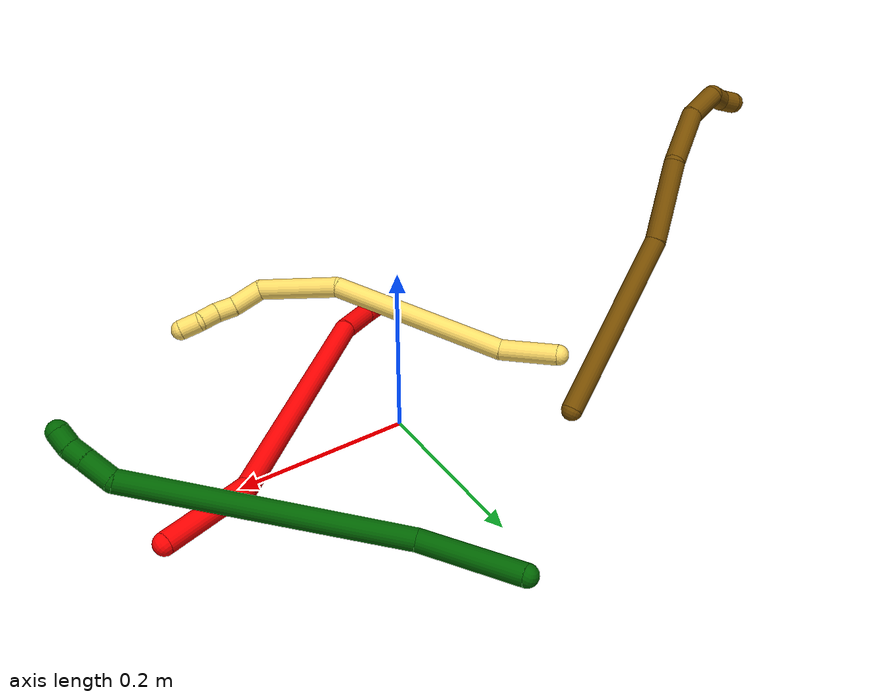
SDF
<sdf version="1.7">
 <world name="default">
  <model name="photoneo_s_sensor">
   <static>1</static>
   <pose>0 0 2 1.57079 1.57079 3.14159</pose>
   <link name="link">
    <inertial><mass>0.1</mass></inertial>
    <sensor name="sensor" type="depth">
     <update_rate>30</update_rate>
     <camera>
      <horizontal_fov>1.22</horizontal_fov>
      <image><width>1920</width><height>1200</height><format>B8G8R8</format></image>
      <clip><near>0.1</near><far>4</far></clip>
      <depth_camera><output>points</output></depth_camera>
     </camera>
     <plugin name="camera_plugin" filename="libgazebo_ros_depth_camera.so">
      <baseline>0.2</baseline>
      <alwaysOn>1</alwaysOn>
      <updateRate>0.0</updateRate>
      <cameraName>camera_ir</cameraName>
      <imageTopicName>/camera/color/image_raw</imageTopicName>
      <cameraInfoTopicName>/camera/color/camera_info</cameraInfoTopicName>
      <depthImageTopicName>/camera/depth/image_raw</depthImageTopicName>
      <depthImageCameraInfoTopicName>/camera/depth/camera_info</depthImageCameraInfoTopicName>
      <pointCloudTopicName>/camera/depth/points</pointCloudTopicName>
      <frameName>fr_optical</frameName>
      <pointCloudCutoff>0.1</pointCloudCutoff>
      <pointCloudCutoffMax>2.0</pointCloudCutoffMax>
      <distortionK1>0</distortionK1>
      <distortionK2>0</distortionK2>
      <distortionK3>0</distortionK3>
      <distortionT1>0</distortionT1>
      <distortionT2>0</distortionT2>
      <CxPrime>0</CxPrime>
      <Cx>0</Cx>
      <Cy>0</Cy>
      <focalLength>0</focalLength>
      <hackBaseline>0</hackBaseline>
     </plugin>
    </sensor>
   </link>
  </model>
  <model name="bin">
   <static>1</static>
   <link name="bottom">
    <collision name="collision-bottom">
     <pose>0 0 -0.01 0 -0 0</pose>
     <geometry><box><size>0.8 0.6 0.02</size></box></geometry>
     <surface>
      <friction><ode><mu>100</mu><mu2>100</mu2></ode></friction>
      <contact><collide_bitmask>65535</collide_bitmask></contact>
     </surface>
    </collision>
   </link>
   <link name="west_wall">
    <collision name="collision-west_wall">
     <pose>-0.41 0 0.1 0 -0 0</pose>
     <geometry><box><size>0.02 0.6 0.2</size></box></geometry>
     <surface>
      <friction><ode><mu>100</mu><mu2>100</mu2></ode></friction>
      <contact><collide_bitmask>65535</collide_bitmask></contact>
     </surface>
    </collision>
   </link>
   <link name="east_wall">
    <collision name="collision-east_wall">
     <pose>0.41 0 0.1 0 -0 0</pose>
     <geometry><box><size>0.02 0.6 0.2</size></box></geometry>
     <surface>
      <friction><ode><mu>100</mu><mu2>100</mu2></ode></friction>
      <contact><collide_bitmask>65535</collide_bitmask></contact>
     </surface>
    </collision>
   </link>
   <link name="south_wall">
    <collision name="collision-south_wall">
     <pose>0 -0.31 0.1 0 -0 0</pose>
     <geometry><box><size>0.8 0.02 0.2</size></box></geometry>
     <surface>
      <friction><ode><mu>100</mu><mu2>100</mu2></ode></friction>
      <contact><collide_bitmask>65535</collide_bitmask></contact>
     </surface>
    </collision>
   </link>
   <link name="north_wall">
    <collision name="collision-north_wall">
     <pose>0 0.31 0.1 0 -0 0</pose>
     <geometry><box><size>0.8 0.02 0.2</size></box></geometry>
     <surface>
      <friction><ode><mu>100</mu><mu2>100</mu2></ode></friction>
      <contact><collide_bitmask>65535</collide_bitmask></contact>
     </surface>
    </collision>
   </link>
  </model>
  <model name="2">
   <static>0</static>
   <link name="2">
    <collision name="collision-cylinder-e_1_1_4">
     <pose>-0.031927 -0.04395 -0.003594 1.65238 -0.626674 -0.676175</pose>
     <geometry><cylinder><radius>0.0125</radius><length>0.108882</length></cylinder></geometry>
     <surface>
      <friction><ode><mu>1.16</mu><mu2>1.16</mu2><slip1>0</slip1><slip2>0</slip2></ode></friction>
      <contact><ode><kp>1e+06</kp><kd>1</kd><max_vel>0</max_vel><min_depth>0.001</min_depth></ode></contact>
     </surface>
    </collision>
    <visual name="visual-cylinder-e_1_1_4">
     <pose>-0.031927 -0.04395 -0.003594 1.65238 -0.626674 -0.676175</pose>
     <geometry><cylinder><radius>0.0125</radius><length>0.108882</length></cylinder></geometry>
     <material><ambient>1 0 0 1</ambient></material>
    </visual>
    <collision name="collision-cylinder-e_2_4_5">
     <pose>-0.16039 -0.175368 -0.066866 2.16954 -0.739227 -1.2655</pose>
     <geometry><cylinder><radius>0.0125</radius><length>0.286575</length></cylinder></geometry>
     <surface>
      <friction><ode><mu>1.16</mu><mu2>1.16</mu2><slip1>0</slip1><slip2>0</slip2></ode></friction>
      <contact><ode><kp>1e+06</kp><kd>1</kd><max_vel>0</max_vel><min_depth>0.001</min_depth></ode></contact>
     </surface>
    </collision>
    <visual name="visual-cylinder-e_2_4_5">
     <pose>-0.16039 -0.175368 -0.066866 2.16954 -0.739227 -1.2655</pose>
     <geometry><cylinder><radius>0.0125</radius><length>0.286575</length></cylinder></geometry>
     <material><ambient>1 0 0 1</ambient></material>
    </visual>
    <collision name="collision-cylinder-e_3_5_6">
     <pose>-0.275736 -0.277236 -0.13136 1.89344 -0.891699 -1.17195</pose>
     <geometry><cylinder><radius>0.0125</radius><length>0.048349</length></cylinder></geometry>
     <surface>
      <friction><ode><mu>1.16</mu><mu2>1.16</mu2><slip1>0</slip1><slip2>0</slip2></ode></friction>
      <contact><ode><kp>1e+06</kp><kd>1</kd><max_vel>0</max_vel><min_depth>0.001</min_depth></ode></contact>
     </surface>
    </collision>
    <visual name="visual-cylinder-e_3_5_6">
     <pose>-0.275736 -0.277236 -0.13136 1.89344 -0.891699 -1.17195</pose>
     <geometry><cylinder><radius>0.0125</radius><length>0.048349</length></cylinder></geometry>
     <material><ambient>1 0 0 1</ambient></material>
    </visual>
    <collision name="collision-cylinder-e_4_6_7">
     <pose>-0.306705 -0.301524 -0.138783 1.82873 -0.871475 -1.0872</pose>
     <geometry><cylinder><radius>0.0125</radius><length>0.031773</length></cylinder></geometry>
     <surface>
      <friction><ode><mu>1.16</mu><mu2>1.16</mu2><slip1>0</slip1><slip2>0</slip2></ode></friction>
      <contact><ode><kp>1e+06</kp><kd>1</kd><max_vel>0</max_vel><min_depth>0.001</min_depth></ode></contact>
     </surface>
    </collision>
    <visual name="visual-cylinder-e_4_6_7">
     <pose>-0.306705 -0.301524 -0.138783 1.82873 -0.871475 -1.0872</pose>
     <geometry><cylinder><radius>0.0125</radius><length>0.031773</length></cylinder></geometry>
     <material><ambient>1 0 0 1</ambient></material>
    </visual>
    <collision name="collision-cylinder-e_5_7_2">
     <pose>-0.330311 -0.312167 -0.14557 2.96296 -1.21562 -2.88554</pose>
     <geometry><cylinder><radius>0.0125</radius><length>0.02442</length></cylinder></geometry>
     <surface>
      <friction><ode><mu>1.16</mu><mu2>1.16</mu2><slip1>0</slip1><slip2>0</slip2></ode></friction>
      <contact><ode><kp>1e+06</kp><kd>1</kd><max_vel>0</max_vel><min_depth>0.001</min_depth></ode></contact>
     </surface>
    </collision>
    <visual name="visual-cylinder-e_5_7_2">
     <pose>-0.330311 -0.312167 -0.14557 2.96296 -1.21562 -2.88554</pose>
     <geometry><cylinder><radius>0.0125</radius><length>0.02442</length></cylinder></geometry>
     <material><ambient>1 0 0 1</ambient></material>
    </visual>
    <collision name="collision-sphere-2">
     <pose>-0.341759 -0.312921 -0.149748 0 -0 0</pose>
     <geometry><sphere><radius>0.0125</radius></sphere></geometry>
     <surface>
      <friction><ode><mu>1.16</mu><mu2>1.16</mu2><slip1>0</slip1><slip2>0</slip2></ode></friction>
      <contact><ode><kp>1e+06</kp><kd>1</kd><max_vel>0</max_vel><min_depth>0.001</min_depth></ode></contact>
     </surface>
    </collision>
    <visual name="visual-sphere-2">
     <pose>-0.341759 -0.312921 -0.149748 0 -0 0</pose>
     <geometry><sphere><radius>0.0125</radius></sphere></geometry>
     <material><ambient>1 0 0 1</ambient></material>
    </visual>
    <collision name="collision-sphere-7">
     <pose>-0.318863 -0.311412 -0.141391 0 -0 0</pose>
     <geometry><sphere><radius>0.0125</radius></sphere></geometry>
     <surface>
      <friction><ode><mu>1.16</mu><mu2>1.16</mu2><slip1>0</slip1><slip2>0</slip2></ode></friction>
      <contact><ode><kp>1e+06</kp><kd>1</kd><max_vel>0</max_vel><min_depth>0.001</min_depth></ode></contact>
     </surface>
    </collision>
    <visual name="visual-sphere-7">
     <pose>-0.318863 -0.311412 -0.141391 0 -0 0</pose>
     <geometry><sphere><radius>0.0125</radius></sphere></geometry>
     <material><ambient>1 0 0 1</ambient></material>
    </visual>
    <collision name="collision-sphere-6">
     <pose>-0.294547 -0.291637 -0.136174 0 -0 0</pose>
     <geometry><sphere><radius>0.0125</radius></sphere></geometry>
     <surface>
      <friction><ode><mu>1.16</mu><mu2>1.16</mu2><slip1>0</slip1><slip2>0</slip2></ode></friction>
      <contact><ode><kp>1e+06</kp><kd>1</kd><max_vel>0</max_vel><min_depth>0.001</min_depth></ode></contact>
     </surface>
    </collision>
    <visual name="visual-sphere-6">
     <pose>-0.294547 -0.291637 -0.136174 0 -0 0</pose>
     <geometry><sphere><radius>0.0125</radius></sphere></geometry>
     <material><ambient>1 0 0 1</ambient></material>
    </visual>
    <collision name="collision-sphere-5">
     <pose>-0.256925 -0.262836 -0.126545 0 -0 0</pose>
     <geometry><sphere><radius>0.0125</radius></sphere></geometry>
     <surface>
      <friction><ode><mu>1.16</mu><mu2>1.16</mu2><slip1>0</slip1><slip2>0</slip2></ode></friction>
      <contact><ode><kp>1e+06</kp><kd>1</kd><max_vel>0</max_vel><min_depth>0.001</min_depth></ode></contact>
     </surface>
    </collision>
    <visual name="visual-sphere-5">
     <pose>-0.256925 -0.262836 -0.126545 0 -0 0</pose>
     <geometry><sphere><radius>0.0125</radius></sphere></geometry>
     <material><ambient>1 0 0 1</ambient></material>
    </visual>
    <collision name="collision-sphere-1">
     <geometry><sphere><radius>0.0125</radius></sphere></geometry>
     <surface>
      <friction><ode><mu>1.16</mu><mu2>1.16</mu2><slip1>0</slip1><slip2>0</slip2></ode></friction>
      <contact><ode><kp>1e+06</kp><kd>1</kd><max_vel>0</max_vel><min_depth>0.001</min_depth></ode></contact>
     </surface>
    </collision>
    <visual name="visual-sphere-1">
     <geometry><sphere><radius>0.0125</radius></sphere></geometry>
     <material><ambient>1 0 0 1</ambient></material>
    </visual>
    <collision name="collision-sphere-4">
     <pose>-0.063854 -0.087899 -0.007188 0 -0 0</pose>
     <geometry><sphere><radius>0.0125</radius></sphere></geometry>
     <surface>
      <friction><ode><mu>1.16</mu><mu2>1.16</mu2><slip1>0</slip1><slip2>0</slip2></ode></friction>
      <contact><ode><kp>1e+06</kp><kd>1</kd><max_vel>0</max_vel><min_depth>0.001</min_depth></ode></contact>
     </surface>
    </collision>
    <visual name="visual-sphere-4">
     <pose>-0.063854 -0.087899 -0.007188 0 -0 0</pose>
     <geometry><sphere><radius>0.0125</radius></sphere></geometry>
     <material><ambient>1 0 0 1</ambient></material>
    </visual>
    <inertial>
     <pose>-0.161166 -0.171298 -0.067738 0 -0 0</pose>
     <mass>0.5</mass>
     <inertia>
      <ixx>-0.000971</ixx>
      <ixy>0</ixy>
      <ixz>0</ixz>
      <iyy>-0.000723</iyy>
      <iyz>0</iyz>
      <izz>0.0027</izz>
     </inertia>
    </inertial>
   </link>
   <pose>0.310083 0.063931 0.030777 -2.376 -0.800247 0.844855</pose>
  </model>
  <model name="5">
   <static>0</static>
   <link name="5">
    <collision name="collision-cylinder-e_1_1_4">
     <pose>0.017163 -0.014379 -0.026947 2.65144 0.511956 1.61619</pose>
     <geometry><cylinder><radius>0.0125</radius><length>0.070071</length></cylinder></geometry>
     <surface>
      <friction><ode><mu>1.16</mu><mu2>1.16</mu2><slip1>0</slip1><slip2>0</slip2></ode></friction>
      <contact><ode><kp>1e+06</kp><kd>1</kd><max_vel>0</max_vel><min_depth>0.001</min_depth></ode></contact>
     </surface>
    </collision>
    <visual name="visual-cylinder-e_1_1_4">
     <pose>0.017163 -0.014379 -0.026947 2.65144 0.511956 1.61619</pose>
     <geometry><cylinder><radius>0.0125</radius><length>0.070071</length></cylinder></geometry>
     <material><ambient>1 0.858824 0.4 1</ambient></material>
    </visual>
    <collision name="collision-cylinder-e_2_4_5">
     <pose>0.077285 -0.098767 -0.123648 2.35436 0.410035 0.928427</pose>
     <geometry><cylinder><radius>0.0125</radius><length>0.215521</length></cylinder></geometry>
     <surface>
      <friction><ode><mu>1.16</mu><mu2>1.16</mu2><slip1>0</slip1><slip2>0</slip2></ode></friction>
      <contact><ode><kp>1e+06</kp><kd>1</kd><max_vel>0</max_vel><min_depth>0.001</min_depth></ode></contact>
     </surface>
    </collision>
    <visual name="visual-cylinder-e_2_4_5">
     <pose>0.077285 -0.098767 -0.123648 2.35436 0.410035 0.928427</pose>
     <geometry><cylinder><radius>0.0125</radius><length>0.215521</length></cylinder></geometry>
     <material><ambient>1 0.858824 0.4 1</ambient></material>
    </visual>
    <collision name="collision-cylinder-e_3_5_6">
     <pose>0.147918 -0.185154 -0.233577 2.75454 0.567836 1.95876</pose>
     <geometry><cylinder><radius>0.0125</radius><length>0.102921</length></cylinder></geometry>
     <surface>
      <friction><ode><mu>1.16</mu><mu2>1.16</mu2><slip1>0</slip1><slip2>0</slip2></ode></friction>
      <contact><ode><kp>1e+06</kp><kd>1</kd><max_vel>0</max_vel><min_depth>0.001</min_depth></ode></contact>
     </surface>
    </collision>
    <visual name="visual-cylinder-e_3_5_6">
     <pose>0.147918 -0.185154 -0.233577 2.75454 0.567836 1.95876</pose>
     <geometry><cylinder><radius>0.0125</radius><length>0.102921</length></cylinder></geometry>
     <material><ambient>1 0.858824 0.4 1</ambient></material>
    </visual>
    <collision name="collision-cylinder-e_4_6_7">
     <pose>0.192972 -0.198891 -0.281812 -2.82516 1.1168 -2.6415</pose>
     <geometry><cylinder><radius>0.0125</radius><length>0.038672</length></cylinder></geometry>
     <surface>
      <friction><ode><mu>1.16</mu><mu2>1.16</mu2><slip1>0</slip1><slip2>0</slip2></ode></friction>
      <contact><ode><kp>1e+06</kp><kd>1</kd><max_vel>0</max_vel><min_depth>0.001</min_depth></ode></contact>
     </surface>
    </collision>
    <visual name="visual-cylinder-e_4_6_7">
     <pose>0.192972 -0.198891 -0.281812 -2.82516 1.1168 -2.6415</pose>
     <geometry><cylinder><radius>0.0125</radius><length>0.038672</length></cylinder></geometry>
     <material><ambient>1 0.858824 0.4 1</ambient></material>
    </visual>
    <collision name="collision-cylinder-e_5_7_8">
     <pose>0.221787 -0.197375 -0.293632 2.85134 1.24024 2.73784</pose>
     <geometry><cylinder><radius>0.0125</radius><length>0.024186</length></cylinder></geometry>
     <surface>
      <friction><ode><mu>1.16</mu><mu2>1.16</mu2><slip1>0</slip1><slip2>0</slip2></ode></friction>
      <contact><ode><kp>1e+06</kp><kd>1</kd><max_vel>0</max_vel><min_depth>0.001</min_depth></ode></contact>
     </surface>
    </collision>
    <visual name="visual-cylinder-e_5_7_8">
     <pose>0.221787 -0.197375 -0.293632 2.85134 1.24024 2.73784</pose>
     <geometry><cylinder><radius>0.0125</radius><length>0.024186</length></cylinder></geometry>
     <material><ambient>1 0.858824 0.4 1</ambient></material>
    </visual>
    <collision name="collision-cylinder-e_6_8_9">
     <pose>0.244927 -0.19812 -0.298221 -2.71314 1.4931 -2.67967</pose>
     <geometry><cylinder><radius>0.0125</radius><length>0.023475</length></cylinder></geometry>
     <surface>
      <friction><ode><mu>1.16</mu><mu2>1.16</mu2><slip1>0</slip1><slip2>0</slip2></ode></friction>
      <contact><ode><kp>1e+06</kp><kd>1</kd><max_vel>0</max_vel><min_depth>0.001</min_depth></ode></contact>
     </surface>
    </collision>
    <visual name="visual-cylinder-e_6_8_9">
     <pose>0.244927 -0.19812 -0.298221 -2.71314 1.4931 -2.67967</pose>
     <geometry><cylinder><radius>0.0125</radius><length>0.023475</length></cylinder></geometry>
     <material><ambient>1 0.858824 0.4 1</ambient></material>
    </visual>
    <collision name="collision-cylinder-e_7_9_2">
     <pose>0.267086 -0.197737 -0.306037 -3.14097 0.981714 -3.14042</pose>
     <geometry><cylinder><radius>0.0125</radius><length>0.025154</length></cylinder></geometry>
     <surface>
      <friction><ode><mu>1.16</mu><mu2>1.16</mu2><slip1>0</slip1><slip2>0</slip2></ode></friction>
      <contact><ode><kp>1e+06</kp><kd>1</kd><max_vel>0</max_vel><min_depth>0.001</min_depth></ode></contact>
     </surface>
    </collision>
    <visual name="visual-cylinder-e_7_9_2">
     <pose>0.267086 -0.197737 -0.306037 -3.14097 0.981714 -3.14042</pose>
     <geometry><cylinder><radius>0.0125</radius><length>0.025154</length></cylinder></geometry>
     <material><ambient>1 0.858824 0.4 1</ambient></material>
    </visual>
    <collision name="collision-sphere-2">
     <pose>0.277543 -0.197733 -0.313025 0 -0 0</pose>
     <geometry><sphere><radius>0.0125</radius></sphere></geometry>
     <surface>
      <friction><ode><mu>1.16</mu><mu2>1.16</mu2><slip1>0</slip1><slip2>0</slip2></ode></friction>
      <contact><ode><kp>1e+06</kp><kd>1</kd><max_vel>0</max_vel><min_depth>0.001</min_depth></ode></contact>
     </surface>
    </collision>
    <visual name="visual-sphere-2">
     <pose>0.277543 -0.197733 -0.313025 0 -0 0</pose>
     <geometry><sphere><radius>0.0125</radius></sphere></geometry>
     <material><ambient>1 0.858824 0.4 1</ambient></material>
    </visual>
    <collision name="collision-sphere-9">
     <pose>0.256629 -0.197741 -0.29905 0 -0 0</pose>
     <geometry><sphere><radius>0.0125</radius></sphere></geometry>
     <surface>
      <friction><ode><mu>1.16</mu><mu2>1.16</mu2><slip1>0</slip1><slip2>0</slip2></ode></friction>
      <contact><ode><kp>1e+06</kp><kd>1</kd><max_vel>0</max_vel><min_depth>0.001</min_depth></ode></contact>
     </surface>
    </collision>
    <visual name="visual-sphere-9">
     <pose>0.256629 -0.197741 -0.29905 0 -0 0</pose>
     <geometry><sphere><radius>0.0125</radius></sphere></geometry>
     <material><ambient>1 0.858824 0.4 1</ambient></material>
    </visual>
    <collision name="collision-sphere-4">
     <pose>0.034327 -0.028757 -0.053895 0 -0 0</pose>
     <geometry><sphere><radius>0.0125</radius></sphere></geometry>
     <surface>
      <friction><ode><mu>1.16</mu><mu2>1.16</mu2><slip1>0</slip1><slip2>0</slip2></ode></friction>
      <contact><ode><kp>1e+06</kp><kd>1</kd><max_vel>0</max_vel><min_depth>0.001</min_depth></ode></contact>
     </surface>
    </collision>
    <visual name="visual-sphere-4">
     <pose>0.034327 -0.028757 -0.053895 0 -0 0</pose>
     <geometry><sphere><radius>0.0125</radius></sphere></geometry>
     <material><ambient>1 0.858824 0.4 1</ambient></material>
    </visual>
    <collision name="collision-sphere-1">
     <geometry><sphere><radius>0.0125</radius></sphere></geometry>
     <surface>
      <friction><ode><mu>1.16</mu><mu2>1.16</mu2><slip1>0</slip1><slip2>0</slip2></ode></friction>
      <contact><ode><kp>1e+06</kp><kd>1</kd><max_vel>0</max_vel><min_depth>0.001</min_depth></ode></contact>
     </surface>
    </collision>
    <visual name="visual-sphere-1">
     <geometry><sphere><radius>0.0125</radius></sphere></geometry>
     <material><ambient>1 0.858824 0.4 1</ambient></material>
    </visual>
    <collision name="collision-sphere-8">
     <pose>0.233225 -0.198498 -0.297392 0 -0 0</pose>
     <geometry><sphere><radius>0.0125</radius></sphere></geometry>
     <surface>
      <friction><ode><mu>1.16</mu><mu2>1.16</mu2><slip1>0</slip1><slip2>0</slip2></ode></friction>
      <contact><ode><kp>1e+06</kp><kd>1</kd><max_vel>0</max_vel><min_depth>0.001</min_depth></ode></contact>
     </surface>
    </collision>
    <visual name="visual-sphere-8">
     <pose>0.233225 -0.198498 -0.297392 0 -0 0</pose>
     <geometry><sphere><radius>0.0125</radius></sphere></geometry>
     <material><ambient>1 0.858824 0.4 1</ambient></material>
    </visual>
    <collision name="collision-sphere-5">
     <pose>0.120242 -0.168778 -0.193402 0 -0 0</pose>
     <geometry><sphere><radius>0.0125</radius></sphere></geometry>
     <surface>
      <friction><ode><mu>1.16</mu><mu2>1.16</mu2><slip1>0</slip1><slip2>0</slip2></ode></friction>
      <contact><ode><kp>1e+06</kp><kd>1</kd><max_vel>0</max_vel><min_depth>0.001</min_depth></ode></contact>
     </surface>
    </collision>
    <visual name="visual-sphere-5">
     <pose>0.120242 -0.168778 -0.193402 0 -0 0</pose>
     <geometry><sphere><radius>0.0125</radius></sphere></geometry>
     <material><ambient>1 0.858824 0.4 1</ambient></material>
    </visual>
    <collision name="collision-sphere-6">
     <pose>0.175594 -0.201529 -0.273753 0 -0 0</pose>
     <geometry><sphere><radius>0.0125</radius></sphere></geometry>
     <surface>
      <friction><ode><mu>1.16</mu><mu2>1.16</mu2><slip1>0</slip1><slip2>0</slip2></ode></friction>
      <contact><ode><kp>1e+06</kp><kd>1</kd><max_vel>0</max_vel><min_depth>0.001</min_depth></ode></contact>
     </surface>
    </collision>
    <visual name="visual-sphere-6">
     <pose>0.175594 -0.201529 -0.273753 0 -0 0</pose>
     <geometry><sphere><radius>0.0125</radius></sphere></geometry>
     <material><ambient>1 0.858824 0.4 1</ambient></material>
    </visual>
    <collision name="collision-sphere-7">
     <pose>0.210349 -0.196252 -0.289871 0 -0 0</pose>
     <geometry><sphere><radius>0.0125</radius></sphere></geometry>
     <surface>
      <friction><ode><mu>1.16</mu><mu2>1.16</mu2><slip1>0</slip1><slip2>0</slip2></ode></friction>
      <contact><ode><kp>1e+06</kp><kd>1</kd><max_vel>0</max_vel><min_depth>0.001</min_depth></ode></contact>
     </surface>
    </collision>
    <visual name="visual-sphere-7">
     <pose>0.210349 -0.196252 -0.289871 0 -0 0</pose>
     <geometry><sphere><radius>0.0125</radius></sphere></geometry>
     <material><ambient>1 0.858824 0.4 1</ambient></material>
    </visual>
    <inertial>
     <pose>0.116755 -0.12688 -0.170552 0 -0 0</pose>
     <mass>0.5</mass>
     <inertia>
      <ixx>0.001168</ixx>
      <ixy>0</ixy>
      <ixz>0</ixz>
      <iyy>0.00061</iyy>
      <iyz>0</iyz>
      <izz>0.000151</izz>
     </inertia>
    </inertial>
   </link>
   <pose>-0.203584 0.024093 0.030002 -0.977086 0.024042 0.185694</pose>
  </model>
  <model name="6">
   <static>0</static>
   <link name="6">
    <collision name="collision-cylinder-e_1_1_4">
     <pose>0.038595 -0.039263 -0.02565 2.14948 0.688571 1.1703</pose>
     <geometry><cylinder><radius>0.0125</radius><length>0.121477</length></cylinder></geometry>
     <surface>
      <friction><ode><mu>1.16</mu><mu2>1.16</mu2><slip1>0</slip1><slip2>0</slip2></ode></friction>
      <contact><ode><kp>1e+06</kp><kd>1</kd><max_vel>0</max_vel><min_depth>0.001</min_depth></ode></contact>
     </surface>
    </collision>
    <visual name="visual-cylinder-e_1_1_4">
     <pose>0.038595 -0.039263 -0.02565 2.14948 0.688571 1.1703</pose>
     <geometry><cylinder><radius>0.0125</radius><length>0.121477</length></cylinder></geometry>
     <material><ambient>0 0.392157 0.003922 1</ambient></material>
    </visual>
    <collision name="collision-cylinder-e_2_4_5">
     <pose>0.223161 -0.11789 -0.066313 1.93513 1.28982 1.65861</pose>
     <geometry><cylinder><radius>0.0125</radius><length>0.303856</length></cylinder></geometry>
     <surface>
      <friction><ode><mu>1.16</mu><mu2>1.16</mu2><slip1>0</slip1><slip2>0</slip2></ode></friction>
      <contact><ode><kp>1e+06</kp><kd>1</kd><max_vel>0</max_vel><min_depth>0.001</min_depth></ode></contact>
     </surface>
    </collision>
    <visual name="visual-cylinder-e_2_4_5">
     <pose>0.223161 -0.11789 -0.066313 1.93513 1.28982 1.65861</pose>
     <geometry><cylinder><radius>0.0125</radius><length>0.303856</length></cylinder></geometry>
     <material><ambient>0 0.392157 0.003922 1</ambient></material>
    </visual>
    <collision name="collision-cylinder-e_3_5_6">
     <pose>0.381093 -0.169344 -0.081426 1.57924 0.780014 0.78597</pose>
     <geometry><cylinder><radius>0.0125</radius><length>0.034017</length></cylinder></geometry>
     <surface>
      <friction><ode><mu>1.16</mu><mu2>1.16</mu2><slip1>0</slip1><slip2>0</slip2></ode></friction>
      <contact><ode><kp>1e+06</kp><kd>1</kd><max_vel>0</max_vel><min_depth>0.001</min_depth></ode></contact>
     </surface>
    </collision>
    <visual name="visual-cylinder-e_3_5_6">
     <pose>0.381093 -0.169344 -0.081426 1.57924 0.780014 0.78597</pose>
     <geometry><cylinder><radius>0.0125</radius><length>0.034017</length></cylinder></geometry>
     <material><ambient>0 0.392157 0.003922 1</ambient></material>
    </visual>
    <collision name="collision-cylinder-e_4_6_7">
     <pose>0.400326 -0.188685 -0.081636 1.58561 0.786817 0.797363</pose>
     <geometry><cylinder><radius>0.0125</radius><length>0.020538</length></cylinder></geometry>
     <surface>
      <friction><ode><mu>1.16</mu><mu2>1.16</mu2><slip1>0</slip1><slip2>0</slip2></ode></friction>
      <contact><ode><kp>1e+06</kp><kd>1</kd><max_vel>0</max_vel><min_depth>0.001</min_depth></ode></contact>
     </surface>
    </collision>
    <visual name="visual-cylinder-e_4_6_7">
     <pose>0.400326 -0.188685 -0.081636 1.58561 0.786817 0.797363</pose>
     <geometry><cylinder><radius>0.0125</radius><length>0.020538</length></cylinder></geometry>
     <material><ambient>0 0.392157 0.003922 1</ambient></material>
    </visual>
    <collision name="collision-cylinder-e_5_7_2">
     <pose>0.413408 -0.203919 -0.079839 1.33667 0.616022 0.492185</pose>
     <geometry><cylinder><radius>0.0125</radius><length>0.020113</length></cylinder></geometry>
     <surface>
      <friction><ode><mu>1.16</mu><mu2>1.16</mu2><slip1>0</slip1><slip2>0</slip2></ode></friction>
      <contact><ode><kp>1e+06</kp><kd>1</kd><max_vel>0</max_vel><min_depth>0.001</min_depth></ode></contact>
     </surface>
    </collision>
    <visual name="visual-cylinder-e_5_7_2">
     <pose>0.413408 -0.203919 -0.079839 1.33667 0.616022 0.492185</pose>
     <geometry><cylinder><radius>0.0125</radius><length>0.020113</length></cylinder></geometry>
     <material><ambient>0 0.392157 0.003922 1</ambient></material>
    </visual>
    <collision name="collision-sphere-2">
     <pose>0.419219 -0.211903 -0.077935 0 -0 0</pose>
     <geometry><sphere><radius>0.0125</radius></sphere></geometry>
     <surface>
      <friction><ode><mu>1.16</mu><mu2>1.16</mu2><slip1>0</slip1><slip2>0</slip2></ode></friction>
      <contact><ode><kp>1e+06</kp><kd>1</kd><max_vel>0</max_vel><min_depth>0.001</min_depth></ode></contact>
     </surface>
    </collision>
    <visual name="visual-sphere-2">
     <pose>0.419219 -0.211903 -0.077935 0 -0 0</pose>
     <geometry><sphere><radius>0.0125</radius></sphere></geometry>
     <material><ambient>0 0.392157 0.003922 1</ambient></material>
    </visual>
    <collision name="collision-sphere-7">
     <pose>0.407598 -0.195935 -0.081743 0 -0 0</pose>
     <geometry><sphere><radius>0.0125</radius></sphere></geometry>
     <surface>
      <friction><ode><mu>1.16</mu><mu2>1.16</mu2><slip1>0</slip1><slip2>0</slip2></ode></friction>
      <contact><ode><kp>1e+06</kp><kd>1</kd><max_vel>0</max_vel><min_depth>0.001</min_depth></ode></contact>
     </surface>
    </collision>
    <visual name="visual-sphere-7">
     <pose>0.407598 -0.195935 -0.081743 0 -0 0</pose>
     <geometry><sphere><radius>0.0125</radius></sphere></geometry>
     <material><ambient>0 0.392157 0.003922 1</ambient></material>
    </visual>
    <collision name="collision-sphere-6">
     <pose>0.393055 -0.181435 -0.081528 0 -0 0</pose>
     <geometry><sphere><radius>0.0125</radius></sphere></geometry>
     <surface>
      <friction><ode><mu>1.16</mu><mu2>1.16</mu2><slip1>0</slip1><slip2>0</slip2></ode></friction>
      <contact><ode><kp>1e+06</kp><kd>1</kd><max_vel>0</max_vel><min_depth>0.001</min_depth></ode></contact>
     </surface>
    </collision>
    <visual name="visual-sphere-6">
     <pose>0.393055 -0.181435 -0.081528 0 -0 0</pose>
     <geometry><sphere><radius>0.0125</radius></sphere></geometry>
     <material><ambient>0 0.392157 0.003922 1</ambient></material>
    </visual>
    <collision name="collision-sphere-5">
     <pose>0.369131 -0.157253 -0.081324 0 -0 0</pose>
     <geometry><sphere><radius>0.0125</radius></sphere></geometry>
     <surface>
      <friction><ode><mu>1.16</mu><mu2>1.16</mu2><slip1>0</slip1><slip2>0</slip2></ode></friction>
      <contact><ode><kp>1e+06</kp><kd>1</kd><max_vel>0</max_vel><min_depth>0.001</min_depth></ode></contact>
     </surface>
    </collision>
    <visual name="visual-sphere-5">
     <pose>0.369131 -0.157253 -0.081324 0 -0 0</pose>
     <geometry><sphere><radius>0.0125</radius></sphere></geometry>
     <material><ambient>0 0.392157 0.003922 1</ambient></material>
    </visual>
    <collision name="collision-sphere-1">
     <geometry><sphere><radius>0.0125</radius></sphere></geometry>
     <surface>
      <friction><ode><mu>1.16</mu><mu2>1.16</mu2><slip1>0</slip1><slip2>0</slip2></ode></friction>
      <contact><ode><kp>1e+06</kp><kd>1</kd><max_vel>0</max_vel><min_depth>0.001</min_depth></ode></contact>
     </surface>
    </collision>
    <visual name="visual-sphere-1">
     <geometry><sphere><radius>0.0125</radius></sphere></geometry>
     <material><ambient>0 0.392157 0.003922 1</ambient></material>
    </visual>
    <collision name="collision-sphere-4">
     <pose>0.07719 -0.078527 -0.051301 0 -0 0</pose>
     <geometry><sphere><radius>0.0125</radius></sphere></geometry>
     <surface>
      <friction><ode><mu>1.16</mu><mu2>1.16</mu2><slip1>0</slip1><slip2>0</slip2></ode></friction>
      <contact><ode><kp>1e+06</kp><kd>1</kd><max_vel>0</max_vel><min_depth>0.001</min_depth></ode></contact>
     </surface>
    </collision>
    <visual name="visual-sphere-4">
     <pose>0.07719 -0.078527 -0.051301 0 -0 0</pose>
     <geometry><sphere><radius>0.0125</radius></sphere></geometry>
     <material><ambient>0 0.392157 0.003922 1</ambient></material>
    </visual>
    <inertial>
     <pose>0.203995 -0.108656 -0.058635 0 -0 0</pose>
     <mass>0.5</mass>
     <inertia>
      <ixx>0.000788</ixx>
      <ixy>0</ixy>
      <ixz>0</ixz>
      <iyy>0.002967</iyy>
      <iyz>0</iyz>
      <izz>-0.001653</izz>
     </inertia>
    </inertial>
   </link>
   <pose>0.031071 0.283988 0.020145 -0.186586 -0.344596 -0.26587</pose>
  </model>
  <model name="12">
   <static>0</static>
   <link name="12">
    <collision name="collision-cylinder-e_1_1_4">
     <pose>-0.035043 -0.011568 0.105318 0.109405 -0.31942 -0.01764</pose>
     <geometry><cylinder><radius>0.0125</radius><length>0.223192</length></cylinder></geometry>
     <surface>
      <friction><ode><mu>1.16</mu><mu2>1.16</mu2><slip1>0</slip1><slip2>0</slip2></ode></friction>
      <contact><ode><kp>1e+06</kp><kd>1</kd><max_vel>0</max_vel><min_depth>0.001</min_depth></ode></contact>
     </surface>
    </collision>
    <visual name="visual-cylinder-e_1_1_4">
     <pose>-0.035043 -0.011568 0.105318 0.109405 -0.31942 -0.01764</pose>
     <geometry><cylinder><radius>0.0125</radius><length>0.223192</length></cylinder></geometry>
     <material><ambient>0.466667 0.301961 0 1</ambient></material>
    </visual>
    <collision name="collision-cylinder-e_2_4_5">
     <pose>-0.07935 -0.036992 0.257277 0.288756 -0.188151 -0.027434</pose>
     <geometry><cylinder><radius>0.0125</radius><length>0.099059</length></cylinder></geometry>
     <surface>
      <friction><ode><mu>1.16</mu><mu2>1.16</mu2><slip1>0</slip1><slip2>0</slip2></ode></friction>
      <contact><ode><kp>1e+06</kp><kd>1</kd><max_vel>0</max_vel><min_depth>0.001</min_depth></ode></contact>
     </surface>
    </collision>
    <visual name="visual-cylinder-e_2_4_5">
     <pose>-0.07935 -0.036992 0.257277 0.288756 -0.188151 -0.027434</pose>
     <geometry><cylinder><radius>0.0125</radius><length>0.099059</length></cylinder></geometry>
     <material><ambient>0.466667 0.301961 0 1</ambient></material>
    </visual>
    <collision name="collision-cylinder-e_3_5_6">
     <pose>-0.112232 -0.063924 0.335426 0.393403 -0.605556 -0.124342</pose>
     <geometry><cylinder><radius>0.0125</radius><length>0.082983</length></cylinder></geometry>
     <surface>
      <friction><ode><mu>1.16</mu><mu2>1.16</mu2><slip1>0</slip1><slip2>0</slip2></ode></friction>
      <contact><ode><kp>1e+06</kp><kd>1</kd><max_vel>0</max_vel><min_depth>0.001</min_depth></ode></contact>
     </surface>
    </collision>
    <visual name="visual-cylinder-e_3_5_6">
     <pose>-0.112232 -0.063924 0.335426 0.393403 -0.605556 -0.124342</pose>
     <geometry><cylinder><radius>0.0125</radius><length>0.082983</length></cylinder></geometry>
     <material><ambient>0.466667 0.301961 0 1</ambient></material>
    </visual>
    <collision name="collision-cylinder-e_4_6_7">
     <pose>-0.152004 -0.077363 0.38419 0.020959 -0.752334 -0.008279</pose>
     <geometry><cylinder><radius>0.0125</radius><length>0.047281</length></cylinder></geometry>
     <surface>
      <friction><ode><mu>1.16</mu><mu2>1.16</mu2><slip1>0</slip1><slip2>0</slip2></ode></friction>
      <contact><ode><kp>1e+06</kp><kd>1</kd><max_vel>0</max_vel><min_depth>0.001</min_depth></ode></contact>
     </surface>
    </collision>
    <visual name="visual-cylinder-e_4_6_7">
     <pose>-0.152004 -0.077363 0.38419 0.020959 -0.752334 -0.008279</pose>
     <geometry><cylinder><radius>0.0125</radius><length>0.047281</length></cylinder></geometry>
     <material><ambient>0.466667 0.301961 0 1</ambient></material>
    </visual>
    <collision name="collision-cylinder-e_5_7_8">
     <pose>-0.181294 -0.07743 0.402021 -0.472867 -1.52163 0.450949</pose>
     <geometry><cylinder><radius>0.0125</radius><length>0.026301</length></cylinder></geometry>
     <surface>
      <friction><ode><mu>1.16</mu><mu2>1.16</mu2><slip1>0</slip1><slip2>0</slip2></ode></friction>
      <contact><ode><kp>1e+06</kp><kd>1</kd><max_vel>0</max_vel><min_depth>0.001</min_depth></ode></contact>
     </surface>
    </collision>
    <visual name="visual-cylinder-e_5_7_8">
     <pose>-0.181294 -0.07743 0.402021 -0.472867 -1.52163 0.450949</pose>
     <geometry><cylinder><radius>0.0125</radius><length>0.026301</length></cylinder></geometry>
     <material><ambient>0.466667 0.301961 0 1</ambient></material>
    </visual>
    <collision name="collision-cylinder-e_6_8_2">
     <pose>-0.203744 -0.072616 0.404828 -1.11211 -1.07483 0.709369</pose>
     <geometry><cylinder><radius>0.0125</radius><length>0.021183</length></cylinder></geometry>
     <surface>
      <friction><ode><mu>1.16</mu><mu2>1.16</mu2><slip1>0</slip1><slip2>0</slip2></ode></friction>
      <contact><ode><kp>1e+06</kp><kd>1</kd><max_vel>0</max_vel><min_depth>0.001</min_depth></ode></contact>
     </surface>
    </collision>
    <visual name="visual-cylinder-e_6_8_2">
     <pose>-0.203744 -0.072616 0.404828 -1.11211 -1.07483 0.709369</pose>
     <geometry><cylinder><radius>0.0125</radius><length>0.021183</length></cylinder></geometry>
     <material><ambient>0.466667 0.301961 0 1</ambient></material>
    </visual>
    <collision name="collision-sphere-2">
     <pose>-0.213059 -0.068097 0.40706 0 -0 0</pose>
     <geometry><sphere><radius>0.0125</radius></sphere></geometry>
     <surface>
      <friction><ode><mu>1.16</mu><mu2>1.16</mu2><slip1>0</slip1><slip2>0</slip2></ode></friction>
      <contact><ode><kp>1e+06</kp><kd>1</kd><max_vel>0</max_vel><min_depth>0.001</min_depth></ode></contact>
     </surface>
    </collision>
    <visual name="visual-sphere-2">
     <pose>-0.213059 -0.068097 0.40706 0 -0 0</pose>
     <geometry><sphere><radius>0.0125</radius></sphere></geometry>
     <material><ambient>0.466667 0.301961 0 1</ambient></material>
    </visual>
    <collision name="collision-sphere-4">
     <pose>-0.070086 -0.023137 0.210636 0 -0 0</pose>
     <geometry><sphere><radius>0.0125</radius></sphere></geometry>
     <surface>
      <friction><ode><mu>1.16</mu><mu2>1.16</mu2><slip1>0</slip1><slip2>0</slip2></ode></friction>
      <contact><ode><kp>1e+06</kp><kd>1</kd><max_vel>0</max_vel><min_depth>0.001</min_depth></ode></contact>
     </surface>
    </collision>
    <visual name="visual-sphere-4">
     <pose>-0.070086 -0.023137 0.210636 0 -0 0</pose>
     <geometry><sphere><radius>0.0125</radius></sphere></geometry>
     <material><ambient>0.466667 0.301961 0 1</ambient></material>
    </visual>
    <collision name="collision-sphere-1">
     <geometry><sphere><radius>0.0125</radius></sphere></geometry>
     <surface>
      <friction><ode><mu>1.16</mu><mu2>1.16</mu2><slip1>0</slip1><slip2>0</slip2></ode></friction>
      <contact><ode><kp>1e+06</kp><kd>1</kd><max_vel>0</max_vel><min_depth>0.001</min_depth></ode></contact>
     </surface>
    </collision>
    <visual name="visual-sphere-1">
     <geometry><sphere><radius>0.0125</radius></sphere></geometry>
     <material><ambient>0.466667 0.301961 0 1</ambient></material>
    </visual>
    <collision name="collision-sphere-8">
     <pose>-0.194429 -0.077136 0.402597 0 -0 0</pose>
     <geometry><sphere><radius>0.0125</radius></sphere></geometry>
     <surface>
      <friction><ode><mu>1.16</mu><mu2>1.16</mu2><slip1>0</slip1><slip2>0</slip2></ode></friction>
      <contact><ode><kp>1e+06</kp><kd>1</kd><max_vel>0</max_vel><min_depth>0.001</min_depth></ode></contact>
     </surface>
    </collision>
    <visual name="visual-sphere-8">
     <pose>-0.194429 -0.077136 0.402597 0 -0 0</pose>
     <geometry><sphere><radius>0.0125</radius></sphere></geometry>
     <material><ambient>0.466667 0.301961 0 1</ambient></material>
    </visual>
    <collision name="collision-sphere-5">
     <pose>-0.088614 -0.050847 0.303918 0 -0 0</pose>
     <geometry><sphere><radius>0.0125</radius></sphere></geometry>
     <surface>
      <friction><ode><mu>1.16</mu><mu2>1.16</mu2><slip1>0</slip1><slip2>0</slip2></ode></friction>
      <contact><ode><kp>1e+06</kp><kd>1</kd><max_vel>0</max_vel><min_depth>0.001</min_depth></ode></contact>
     </surface>
    </collision>
    <visual name="visual-sphere-5">
     <pose>-0.088614 -0.050847 0.303918 0 -0 0</pose>
     <geometry><sphere><radius>0.0125</radius></sphere></geometry>
     <material><ambient>0.466667 0.301961 0 1</ambient></material>
    </visual>
    <collision name="collision-sphere-6">
     <pose>-0.13585 -0.077001 0.366934 0 -0 0</pose>
     <geometry><sphere><radius>0.0125</radius></sphere></geometry>
     <surface>
      <friction><ode><mu>1.16</mu><mu2>1.16</mu2><slip1>0</slip1><slip2>0</slip2></ode></friction>
      <contact><ode><kp>1e+06</kp><kd>1</kd><max_vel>0</max_vel><min_depth>0.001</min_depth></ode></contact>
     </surface>
    </collision>
    <visual name="visual-sphere-6">
     <pose>-0.13585 -0.077001 0.366934 0 -0 0</pose>
     <geometry><sphere><radius>0.0125</radius></sphere></geometry>
     <material><ambient>0.466667 0.301961 0 1</ambient></material>
    </visual>
    <collision name="collision-sphere-7">
     <pose>-0.168159 -0.077724 0.401446 0 -0 0</pose>
     <geometry><sphere><radius>0.0125</radius></sphere></geometry>
     <surface>
      <friction><ode><mu>1.16</mu><mu2>1.16</mu2><slip1>0</slip1><slip2>0</slip2></ode></friction>
      <contact><ode><kp>1e+06</kp><kd>1</kd><max_vel>0</max_vel><min_depth>0.001</min_depth></ode></contact>
     </surface>
    </collision>
    <visual name="visual-sphere-7">
     <pose>-0.168159 -0.077724 0.401446 0 -0 0</pose>
     <geometry><sphere><radius>0.0125</radius></sphere></geometry>
     <material><ambient>0.466667 0.301961 0 1</ambient></material>
    </visual>
    <inertial>
     <pose>-0.082532 -0.037567 0.228281 0 -0 0</pose>
     <mass>0.5</mass>
     <inertia>
      <ixx>0.000982</ixx>
      <ixy>0</ixy>
      <ixz>0</ixz>
      <iyy>0.001046</iyy>
      <iyz>0</iyz>
      <izz>0.000518</izz>
     </inertia>
    </inertial>
   </link>
   <pose>-0.168608 0.097158 0.011888 -0.05053 -0.615461 0.323701</pose>
  </model>
 </world>
</sdf>
